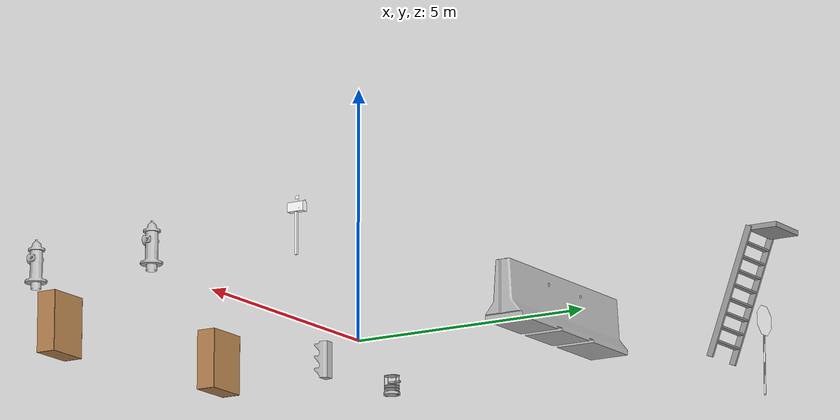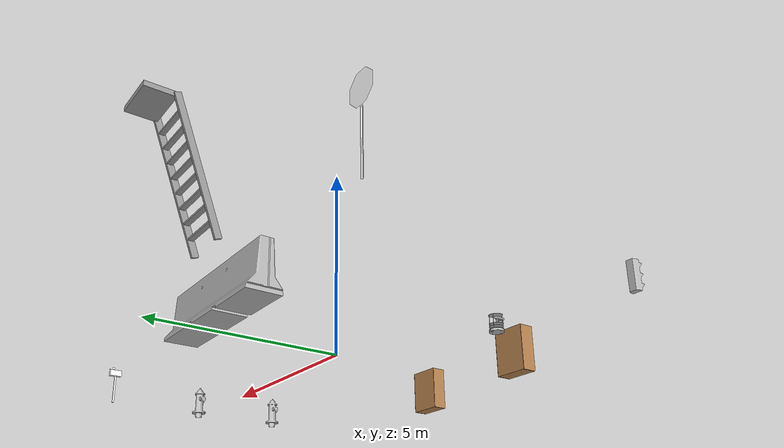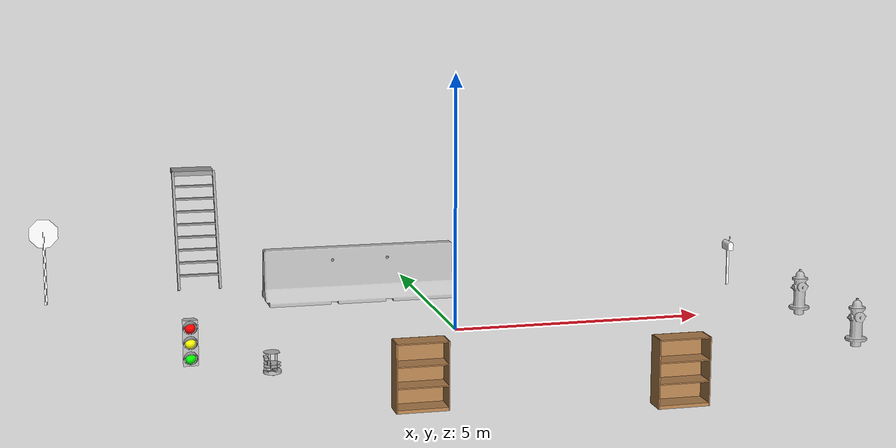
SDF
<?xml version='1.0'?>
<sdf version='1.7'>
  <model name='Race_Track_Models'>
    <model name='Mailbox'>
      <link name='link'>
        <collision name='collision'>
          <geometry>
            <mesh>
              <uri>model://mailbox/meshes/mailbox.dae</uri>
            </mesh>
          </geometry>
        </collision>
        <visual name='visual'>
          <geometry>
            <mesh>
              <uri>model://mailbox/meshes/mailbox.dae</uri>
            </mesh>
          </geometry>
          <material>
            <script>
              <uri>model://mailbox/materials/scripts</uri>
              <uri>model://mailbox/materials/textures</uri>
              <name>Mailbox/Diffuse</name>
            </script>
          </material>
        </visual>
      </link>
      <pose>7.00567 3.1842 -0.178331 0 -0 0</pose>
    </model>
    <model name='Stop Sign'>
      <static>1</static>
      <link name='link'>
        <collision name='collision'>
          <geometry>
            <mesh>
              <uri>model://stop_sign/meshes/stop_sign.dae</uri>
            </mesh>
          </geometry>
        </collision>
        <visual name='visual'>
          <geometry>
            <mesh>
              <uri>model://stop_sign/meshes/stop_sign.dae</uri>
            </mesh>
          </geometry>
          <material>
            <script>
              <uri>model://stop_sign/materials/scripts</uri>
              <uri>model://stop_sign/materials/textures</uri>
              <name>StopSign/Diffuse</name>
            </script>
          </material>
        </visual>
      </link>
      <pose>-7.69841 4.6734 -0.178331 0 -0 3.13707</pose>
    </model>
    <model name='bookshelf'>
      <static>1</static>
      <link name='link'>
        <inertial>
          <mass>1</mass>
        </inertial>
        <collision name='back'>
          <pose>0 0.005 0.6 0 -0 0</pose>
          <geometry>
            <box>
              <size>0.9 0.01 1.2</size>
            </box>
          </geometry>
        </collision>
        <visual name='visual1'>
          <pose>0 0.005 0.6 0 -0 0</pose>
          <geometry>
            <box>
              <size>0.9 0.01 1.2</size>
            </box>
          </geometry>
          <material>
            <script>
              <uri>file://media/materials/scripts/gazebo.material</uri>
              <name>Gazebo/Wood</name>
            </script>
          </material>
        </visual>
        <collision name='left_side'>
          <pose>0.45 -0.195 0.6 0 -0 0</pose>
          <geometry>
            <box>
              <size>0.02 0.4 1.2</size>
            </box>
          </geometry>
        </collision>
        <visual name='visual2'>
          <pose>0.45 -0.195 0.6 0 -0 0</pose>
          <geometry>
            <box>
              <size>0.02 0.4 1.2</size>
            </box>
          </geometry>
          <material>
            <script>
              <uri>file://media/materials/scripts/gazebo.material</uri>
              <name>Gazebo/Wood</name>
            </script>
          </material>
        </visual>
        <collision name='right_side'>
          <pose>-0.45 -0.195 0.6 0 -0 0</pose>
          <geometry>
            <box>
              <size>0.02 0.4 1.2</size>
            </box>
          </geometry>
        </collision>
        <visual name='visual3'>
          <pose>-0.45 -0.195 0.6 0 -0 0</pose>
          <geometry>
            <box>
              <size>0.02 0.4 1.2</size>
            </box>
          </geometry>
          <material>
            <script>
              <uri>file://media/materials/scripts/gazebo.material</uri>
              <name>Gazebo/Wood</name>
            </script>
          </material>
        </visual>
        <collision name='bottom'>
          <pose>0 -0.195 0.03 0 -0 0</pose>
          <geometry>
            <box>
              <size>0.88 0.4 0.06</size>
            </box>
          </geometry>
        </collision>
        <visual name='visual4'>
          <pose>0 -0.195 0.03 0 -0 0</pose>
          <geometry>
            <box>
              <size>0.88 0.4 0.06</size>
            </box>
          </geometry>
          <material>
            <script>
              <uri>file://media/materials/scripts/gazebo.material</uri>
              <name>Gazebo/Wood</name>
            </script>
          </material>
        </visual>
        <collision name='top'>
          <pose>0 -0.195 1.19 0 -0 0</pose>
          <geometry>
            <box>
              <size>0.88 0.4 0.02</size>
            </box>
          </geometry>
        </collision>
        <visual name='visual5'>
          <pose>0 -0.195 1.19 0 -0 0</pose>
          <geometry>
            <box>
              <size>0.88 0.4 0.02</size>
            </box>
          </geometry>
          <material>
            <script>
              <uri>file://media/materials/scripts/gazebo.material</uri>
              <name>Gazebo/Wood</name>
            </script>
          </material>
        </visual>
        <collision name='low_shelf'>
          <pose>0 -0.195 0.43 0 -0 0</pose>
          <geometry>
            <box>
              <size>0.88 0.4 0.02</size>
            </box>
          </geometry>
        </collision>
        <visual name='visual6'>
          <pose>0 -0.195 0.43 0 -0 0</pose>
          <geometry>
            <box>
              <size>0.88 0.4 0.02</size>
            </box>
          </geometry>
          <material>
            <script>
              <uri>file://media/materials/scripts/gazebo.material</uri>
              <name>Gazebo/Wood</name>
            </script>
          </material>
        </visual>
        <collision name='high_shelf'>
          <pose>0 -0.195 0.8 0 -0 0</pose>
          <geometry>
            <box>
              <size>0.88 0.4 0.02</size>
            </box>
          </geometry>
        </collision>
        <visual name='visual7'>
          <pose>0 -0.195 0.8 0 -0 0</pose>
          <geometry>
            <box>
              <size>0.88 0.4 0.02</size>
            </box>
          </geometry>
          <material>
            <script>
              <uri>file://media/materials/scripts/gazebo.material</uri>
              <name>Gazebo/Wood</name>
            </script>
          </material>
        </visual>
      </link>
      <pose>-1.7139 -4.20805 -0.178331 0 -0 0</pose>
    </model>
    <model name='bookshelf_0'>
      <static>1</static>
      <link name='link'>
        <inertial>
          <mass>1</mass>
        </inertial>
        <collision name='back'>
          <pose>0 0.005 0.6 0 -0 0</pose>
          <geometry>
            <box>
              <size>0.9 0.01 1.2</size>
            </box>
          </geometry>
        </collision>
        <visual name='visual1'>
          <pose>0 0.005 0.6 0 -0 0</pose>
          <geometry>
            <box>
              <size>0.9 0.01 1.2</size>
            </box>
          </geometry>
          <material>
            <script>
              <uri>file://media/materials/scripts/gazebo.material</uri>
              <name>Gazebo/Wood</name>
            </script>
          </material>
        </visual>
        <collision name='left_side'>
          <pose>0.45 -0.195 0.6 0 -0 0</pose>
          <geometry>
            <box>
              <size>0.02 0.4 1.2</size>
            </box>
          </geometry>
        </collision>
        <visual name='visual2'>
          <pose>0.45 -0.195 0.6 0 -0 0</pose>
          <geometry>
            <box>
              <size>0.02 0.4 1.2</size>
            </box>
          </geometry>
          <material>
            <script>
              <uri>file://media/materials/scripts/gazebo.material</uri>
              <name>Gazebo/Wood</name>
            </script>
          </material>
        </visual>
        <collision name='right_side'>
          <pose>-0.45 -0.195 0.6 0 -0 0</pose>
          <geometry>
            <box>
              <size>0.02 0.4 1.2</size>
            </box>
          </geometry>
        </collision>
        <visual name='visual3'>
          <pose>-0.45 -0.195 0.6 0 -0 0</pose>
          <geometry>
            <box>
              <size>0.02 0.4 1.2</size>
            </box>
          </geometry>
          <material>
            <script>
              <uri>file://media/materials/scripts/gazebo.material</uri>
              <name>Gazebo/Wood</name>
            </script>
          </material>
        </visual>
        <collision name='bottom'>
          <pose>0 -0.195 0.03 0 -0 0</pose>
          <geometry>
            <box>
              <size>0.88 0.4 0.06</size>
            </box>
          </geometry>
        </collision>
        <visual name='visual4'>
          <pose>0 -0.195 0.03 0 -0 0</pose>
          <geometry>
            <box>
              <size>0.88 0.4 0.06</size>
            </box>
          </geometry>
          <material>
            <script>
              <uri>file://media/materials/scripts/gazebo.material</uri>
              <name>Gazebo/Wood</name>
            </script>
          </material>
        </visual>
        <collision name='top'>
          <pose>0 -0.195 1.19 0 -0 0</pose>
          <geometry>
            <box>
              <size>0.88 0.4 0.02</size>
            </box>
          </geometry>
        </collision>
        <visual name='visual5'>
          <pose>0 -0.195 1.19 0 -0 0</pose>
          <geometry>
            <box>
              <size>0.88 0.4 0.02</size>
            </box>
          </geometry>
          <material>
            <script>
              <uri>file://media/materials/scripts/gazebo.material</uri>
              <name>Gazebo/Wood</name>
            </script>
          </material>
        </visual>
        <collision name='low_shelf'>
          <pose>0 -0.195 0.43 0 -0 0</pose>
          <geometry>
            <box>
              <size>0.88 0.4 0.02</size>
            </box>
          </geometry>
        </collision>
        <visual name='visual6'>
          <pose>0 -0.195 0.43 0 -0 0</pose>
          <geometry>
            <box>
              <size>0.88 0.4 0.02</size>
            </box>
          </geometry>
          <material>
            <script>
              <uri>file://media/materials/scripts/gazebo.material</uri>
              <name>Gazebo/Wood</name>
            </script>
          </material>
        </visual>
        <collision name='high_shelf'>
          <pose>0 -0.195 0.8 0 -0 0</pose>
          <geometry>
            <box>
              <size>0.88 0.4 0.02</size>
            </box>
          </geometry>
        </collision>
        <visual name='visual7'>
          <pose>0 -0.195 0.8 0 -0 0</pose>
          <geometry>
            <box>
              <size>0.88 0.4 0.02</size>
            </box>
          </geometry>
          <material>
            <script>
              <uri>file://media/materials/scripts/gazebo.material</uri>
              <name>Gazebo/Wood</name>
            </script>
          </material>
        </visual>
      </link>
      <pose>2.63462 -4.96152 -0.178331 0 -0 0</pose>
    </model>
    <model name='fire_hydrant'>
      <static>1</static>
      <link name='link'>
        <collision name='collision'>
          <geometry>
            <mesh>
              <uri>model://fire_hydrant/meshes/fire_hydrant.dae</uri>
            </mesh>
          </geometry>
        </collision>
        <visual name='visual'>
          <geometry>
            <mesh>
              <uri>model://fire_hydrant/meshes/fire_hydrant.dae</uri>
            </mesh>
          </geometry>
        </visual>
      </link>
      <pose>7.33669 -2.30001 -0.178331 0 -0 0</pose>
    </model>
    <model name='fire_hydrant_0'>
      <static>1</static>
      <link name='link'>
        <collision name='collision'>
          <geometry>
            <mesh>
              <uri>model://fire_hydrant/meshes/fire_hydrant.dae</uri>
            </mesh>
          </geometry>
        </collision>
        <visual name='visual'>
          <geometry>
            <mesh>
              <uri>model://fire_hydrant/meshes/fire_hydrant.dae</uri>
            </mesh>
          </geometry>
        </visual>
      </link>
      <pose>7.38024 0.302282 -0.178331 0 -0 0</pose>
    </model>
    <model name='jersey_barrier'>
      <static>1</static>
      <link name='link'>
        <visual name='visual'>
          <geometry>
            <mesh>
              <uri>model://jersey_barrier/meshes/jersey_barrier.dae</uri>
            </mesh>
          </geometry>
        </visual>
        <collision name='upright'>
          <pose>0 0 0.5715 0 -0 0</pose>
          <geometry>
            <box>
              <size>4.06542 0.3063 1.143</size>
            </box>
          </geometry>
        </collision>
        <collision name='base'>
          <pose>0 0 0.032258 0 -0 0</pose>
          <geometry>
            <box>
              <size>4.06542 0.8107 0.064516</size>
            </box>
          </geometry>
        </collision>
        <collision name='base2'>
          <pose>0 0 0.1 0 -0 0</pose>
          <geometry>
            <box>
              <size>4.06542 0.65 0.1</size>
            </box>
          </geometry>
        </collision>
        <collision name='base3'>
          <pose>0 0 0.2 0 -0 0</pose>
          <geometry>
            <box>
              <size>4.06542 0.5 0.1</size>
            </box>
          </geometry>
        </collision>
        <collision name='left-angle'>
          <pose>0 -0.224 0.2401 0.9 -0 0</pose>
          <geometry>
            <box>
              <size>4.06542 0.5 0.064516</size>
            </box>
          </geometry>
        </collision>
        <collision name='right-angle'>
          <pose>0 0.224 0.2401 -0.9 0 0</pose>
          <geometry>
            <box>
              <size>4.06542 0.5 0.064516</size>
            </box>
          </geometry>
        </collision>
      </link>
      <pose>-1.18328 3.74123 -0.178331 0 -0 0</pose>
    </model>
    <model name='ladder_70deg_0rails'>
      <static>1</static>
      <link name='step0'>
        <pose>0 0.097059 0.266667 0 -0 0</pose>
        <inertial>
          <mass>9.75482</mass>
          <inertia>
            <ixx>0.00957124</ixx>
            <iyy>0.65963</iyy>
            <izz>0.666842</izz>
            <ixy>0</ixy>
            <ixz>0</ixz>
            <iyz>0</iyz>
          </inertia>
        </inertial>
        <collision name='collision'>
          <geometry>
            <box>
              <size>0.9 0.1016 0.0381</size>
            </box>
          </geometry>
        </collision>
        <visual name='visual'>
          <geometry>
            <box>
              <size>0.9 0.1016 0.0381</size>
            </box>
          </geometry>
          <material>
            <script>
              <uri>file://media/materials/scripts/gazebo.material</uri>
              <name>Gazebo/Grey</name>
            </script>
          </material>
        </visual>
      </link>
      <link name='step1'>
        <pose>0 0.194117 0.533333 0 -0 0</pose>
        <inertial>
          <mass>9.75482</mass>
          <inertia>
            <ixx>0.00957124</ixx>
            <iyy>0.65963</iyy>
            <izz>0.666842</izz>
            <ixy>0</ixy>
            <ixz>0</ixz>
            <iyz>0</iyz>
          </inertia>
        </inertial>
        <collision name='collision'>
          <geometry>
            <box>
              <size>0.9 0.1016 0.0381</size>
            </box>
          </geometry>
        </collision>
        <visual name='visual'>
          <geometry>
            <box>
              <size>0.9 0.1016 0.0381</size>
            </box>
          </geometry>
          <material>
            <script>
              <uri>file://media/materials/scripts/gazebo.material</uri>
              <name>Gazebo/Grey</name>
            </script>
          </material>
        </visual>
      </link>
      <link name='step2'>
        <pose>0 0.291176 0.8 0 -0 0</pose>
        <inertial>
          <mass>9.75482</mass>
          <inertia>
            <ixx>0.00957124</ixx>
            <iyy>0.65963</iyy>
            <izz>0.666842</izz>
            <ixy>0</ixy>
            <ixz>0</ixz>
            <iyz>0</iyz>
          </inertia>
        </inertial>
        <collision name='collision'>
          <geometry>
            <box>
              <size>0.9 0.1016 0.0381</size>
            </box>
          </geometry>
        </collision>
        <visual name='visual'>
          <geometry>
            <box>
              <size>0.9 0.1016 0.0381</size>
            </box>
          </geometry>
          <material>
            <script>
              <uri>file://media/materials/scripts/gazebo.material</uri>
              <name>Gazebo/Grey</name>
            </script>
          </material>
        </visual>
      </link>
      <link name='step3'>
        <pose>0 0.388235 1.06667 0 -0 0</pose>
        <inertial>
          <mass>9.75482</mass>
          <inertia>
            <ixx>0.00957124</ixx>
            <iyy>0.65963</iyy>
            <izz>0.666842</izz>
            <ixy>0</ixy>
            <ixz>0</ixz>
            <iyz>0</iyz>
          </inertia>
        </inertial>
        <collision name='collision'>
          <geometry>
            <box>
              <size>0.9 0.1016 0.0381</size>
            </box>
          </geometry>
        </collision>
        <visual name='visual'>
          <geometry>
            <box>
              <size>0.9 0.1016 0.0381</size>
            </box>
          </geometry>
          <material>
            <script>
              <uri>file://media/materials/scripts/gazebo.material</uri>
              <name>Gazebo/Grey</name>
            </script>
          </material>
        </visual>
      </link>
      <link name='step4'>
        <pose>0 0.485294 1.33333 0 -0 0</pose>
        <inertial>
          <mass>9.75482</mass>
          <inertia>
            <ixx>0.00957124</ixx>
            <iyy>0.65963</iyy>
            <izz>0.666842</izz>
            <ixy>0</ixy>
            <ixz>0</ixz>
            <iyz>0</iyz>
          </inertia>
        </inertial>
        <collision name='collision'>
          <geometry>
            <box>
              <size>0.9 0.1016 0.0381</size>
            </box>
          </geometry>
        </collision>
        <visual name='visual'>
          <geometry>
            <box>
              <size>0.9 0.1016 0.0381</size>
            </box>
          </geometry>
          <material>
            <script>
              <uri>file://media/materials/scripts/gazebo.material</uri>
              <name>Gazebo/Grey</name>
            </script>
          </material>
        </visual>
      </link>
      <link name='step5'>
        <pose>0 0.582352 1.6 0 -0 0</pose>
        <inertial>
          <mass>9.75482</mass>
          <inertia>
            <ixx>0.00957124</ixx>
            <iyy>0.65963</iyy>
            <izz>0.666842</izz>
            <ixy>0</ixy>
            <ixz>0</ixz>
            <iyz>0</iyz>
          </inertia>
        </inertial>
        <collision name='collision'>
          <geometry>
            <box>
              <size>0.9 0.1016 0.0381</size>
            </box>
          </geometry>
        </collision>
        <visual name='visual'>
          <geometry>
            <box>
              <size>0.9 0.1016 0.0381</size>
            </box>
          </geometry>
          <material>
            <script>
              <uri>file://media/materials/scripts/gazebo.material</uri>
              <name>Gazebo/Grey</name>
            </script>
          </material>
        </visual>
      </link>
      <link name='step6'>
        <pose>0 0.679411 1.86667 0 -0 0</pose>
        <inertial>
          <mass>9.75482</mass>
          <inertia>
            <ixx>0.00957124</ixx>
            <iyy>0.65963</iyy>
            <izz>0.666842</izz>
            <ixy>0</ixy>
            <ixz>0</ixz>
            <iyz>0</iyz>
          </inertia>
        </inertial>
        <collision name='collision'>
          <geometry>
            <box>
              <size>0.9 0.1016 0.0381</size>
            </box>
          </geometry>
        </collision>
        <visual name='visual'>
          <geometry>
            <box>
              <size>0.9 0.1016 0.0381</size>
            </box>
          </geometry>
          <material>
            <script>
              <uri>file://media/materials/scripts/gazebo.material</uri>
              <name>Gazebo/Grey</name>
            </script>
          </material>
        </visual>
      </link>
      <link name='step7'>
        <pose>0 0.77647 2.13333 0 -0 0</pose>
        <inertial>
          <mass>9.75482</mass>
          <inertia>
            <ixx>0.00957124</ixx>
            <iyy>0.65963</iyy>
            <izz>0.666842</izz>
            <ixy>0</ixy>
            <ixz>0</ixz>
            <iyz>0</iyz>
          </inertia>
        </inertial>
        <collision name='collision'>
          <geometry>
            <box>
              <size>0.9 0.1016 0.0381</size>
            </box>
          </geometry>
        </collision>
        <visual name='visual'>
          <geometry>
            <box>
              <size>0.9 0.1016 0.0381</size>
            </box>
          </geometry>
          <material>
            <script>
              <uri>file://media/materials/scripts/gazebo.material</uri>
              <name>Gazebo/Grey</name>
            </script>
          </material>
        </visual>
      </link>
      <link name='landing'>
        <pose>0 1.17353 2.4 0 -0 0</pose>
        <inertial>
          <mass>57.6072</mass>
          <inertia>
            <ixx>1.73518</ixx>
            <iyy>3.89545</iyy>
            <izz>5.6167</izz>
            <ixy>0</ixy>
            <ixz>0</ixz>
            <iyz>0</iyz>
          </inertia>
        </inertial>
        <collision name='collision'>
          <geometry>
            <box>
              <size>0.9 0.6 0.1016</size>
            </box>
          </geometry>
        </collision>
        <visual name='visual'>
          <geometry>
            <box>
              <size>0.9 0.6 0.1016</size>
            </box>
          </geometry>
          <material>
            <script>
              <uri>file://media/materials/scripts/gazebo.material</uri>
              <name>Gazebo/Grey</name>
            </script>
          </material>
        </visual>
      </link>
      <link name='left_side_wall'>
        <pose>-0.45 0.436764 1.2 1.22173 -0 0</pose>
        <collision name='collision'>
          <geometry>
            <box>
              <size>0.0508 2.63403 0.13</size>
            </box>
          </geometry>
        </collision>
        <visual name='visual'>
          <geometry>
            <box>
              <size>0.0508 2.63403 0.13</size>
            </box>
          </geometry>
          <material>
            <script>
              <uri>file://media/materials/scripts/gazebo.material</uri>
              <name>Gazebo/Grey</name>
            </script>
          </material>
        </visual>
      </link>
      <link name='right_side_wall'>
        <pose>0.45 0.436764 1.2 1.22173 -0 0</pose>
        <collision name='collision'>
          <geometry>
            <box>
              <size>0.0508 2.63403 0.13</size>
            </box>
          </geometry>
        </collision>
        <visual name='visual'>
          <geometry>
            <box>
              <size>0.0508 2.63403 0.13</size>
            </box>
          </geometry>
          <material>
            <script>
              <uri>file://media/materials/scripts/gazebo.material</uri>
              <name>Gazebo/Grey</name>
            </script>
          </material>
        </visual>
      </link>
      <pose>-4.38738 5.53394 -0.178331 0 -0 0</pose>
    </model>
    <model name='stop_light'>
      <static>1</static>
      <pose>-5.54624 -4.30489 1.60498 0 -0 0</pose>
      <link name='link'>
        <collision name='collision'>
          <geometry>
            <mesh>
              <uri>model://stop_light/meshes/stop_light.obj</uri>
              <scale>0.01 0.01 0.01</scale>
            </mesh>
          </geometry>
        </collision>
        <visual name='frame'>
          <geometry>
            <mesh>
              <uri>model://stop_light/meshes/stop_light.obj</uri>
              <scale>0.01 0.01 0.01</scale>
            </mesh>
          </geometry>
        </visual>
        <visual name='red'>
          <pose>-0.001123 -0.082251 -0.147514 0 -0 0</pose>
          <geometry>
            <sphere>
              <radius>0.1012</radius>
            </sphere>
          </geometry>
          <material>
            <script>
              <uri>model://stop_light/materials/scripts/</uri>
              <uri>model://stop_light/materials/textures/</uri>
              <name>StopLight/Light</name>
            </script>
            <ambient>1 0 0 1</ambient>
            <specular>1 0 0 1</specular>
          </material>
        </visual>
        <visual name='yellow'>
          <pose>-0.001123 -0.082251 -0.402 0 -0 0</pose>
          <geometry>
            <sphere>
              <radius>0.1012</radius>
            </sphere>
          </geometry>
          <material>
            <script>
              <uri>model://stop_light/materials/scripts/</uri>
              <uri>model://stop_light/materials/textures/</uri>
              <name>StopLight/Light</name>
            </script>
            <ambient>1 1 0 1</ambient>
            <specular>1 1 0 1</specular>
          </material>
        </visual>
        <visual name='green'>
          <pose>-0.001123 -0.082251 -0.655 0 -0 0</pose>
          <geometry>
            <sphere>
              <radius>0.1012</radius>
            </sphere>
          </geometry>
          <material>
            <script>
              <uri>model://stop_light/materials/scripts/</uri>
              <uri>model://stop_light/materials/textures/</uri>
              <name>StopLight/Light</name>
            </script>
            <ambient>0 1 0 1</ambient>
            <specular>0 1 0 1</specular>
          </material>
        </visual>
      </link>
    </model>
    <model name='turtlebot'>
      <link name='rack'>
        <inertial>
          <pose>0.001453 -0.000453 0.029787 0 -0 0</pose>
          <inertia>
            <ixx>0.05864</ixx>
            <ixy>0.000124</ixy>
            <ixz>0.000615</ixz>
            <iyy>0.058786</iyy>
            <iyz>1.4e-05</iyz>
            <izz>1.53244</izz>
          </inertia>
          <mass>2.234</mass>
        </inertial>
        <collision name='plate_0_collision'>
          <pose>-0.04334 0 0.084757 0 -0 0</pose>
          <geometry>
            <box>
              <size>0.233502 0.314845 0.006401</size>
            </box>
          </geometry>
        </collision>
        <visual name='plate_0_visual'>
          <pose>-0.04334 0 0.084757 0 -0 0</pose>
          <geometry>
            <mesh>
              <uri>model://turtlebot/meshes/plate_0_logo.dae</uri>
            </mesh>
          </geometry>
        </visual>
        <collision name='plate_1_collision'>
          <pose>-0.00266 0 0.141907 0 -0 0</pose>
          <geometry>
            <box>
              <size>0.314856 0.314856 0.006401</size>
            </box>
          </geometry>
        </collision>
        <visual name='plate_1_visual'>
          <pose>-0.00266 0 0.141907 0 -0 0</pose>
          <geometry>
            <mesh>
              <uri>model://turtlebot/meshes/plate_1_logo.dae</uri>
            </mesh>
          </geometry>
        </visual>
        <collision name='plate_2_collision'>
          <pose>-0.00266 0 0.199108 0 -0 0</pose>
          <geometry>
            <box>
              <size>0.314856 0.314856 0.006401</size>
            </box>
          </geometry>
        </collision>
        <visual name='plate_2_visual'>
          <pose>-0.00266 0 0.199108 0 -0 0</pose>
          <geometry>
            <mesh>
              <uri>model://turtlebot/meshes/plate_1_logo.dae</uri>
            </mesh>
          </geometry>
        </visual>
        <collision name='plate_3_collision'>
          <pose>-0.01582 0 0.405457 0 -0 0</pose>
          <geometry>
            <box>
              <size>0.288 0.315 0.006401</size>
            </box>
          </geometry>
        </collision>
        <visual name='plate_3_visual'>
          <pose>-0.01582 0 0.405457 0 -0 0</pose>
          <geometry>
            <mesh>
              <uri>model://turtlebot/meshes/plate_2_logo.dae</uri>
            </mesh>
          </geometry>
        </visual>
        <collision name='spacer_0_collision'>
          <pose>-0.00254 0.111468 0.079992 0 -0 0</pose>
          <geometry>
            <cylinder>
              <radius>0.0127</radius>
              <length>0.003175</length>
            </cylinder>
          </geometry>
        </collision>
        <visual name='spacer_0_visual'>
          <pose>-0.00254 0.111468 0.079992 0 -0 0</pose>
          <geometry>
            <mesh>
              <uri>model://turtlebot/meshes/68-02403-125_Spacer.dae</uri>
            </mesh>
          </geometry>
        </visual>
        <collision name='spacer_1_collision'>
          <pose>-0.00254 -0.111468 0.079992 0 -0 0</pose>
          <geometry>
            <cylinder>
              <radius>0.0127</radius>
              <length>0.003175</length>
            </cylinder>
          </geometry>
        </collision>
        <visual name='spacer_1_visual'>
          <pose>-0.00254 -0.111468 0.079992 0 -0 0</pose>
          <geometry>
            <mesh>
              <uri>model://turtlebot/meshes/68-02403-125_Spacer.dae</uri>
            </mesh>
          </geometry>
        </visual>
        <collision name='spacer_2_collision'>
          <pose>-0.07239 -0.111468 0.079992 0 -0 0</pose>
          <geometry>
            <cylinder>
              <radius>0.0127</radius>
              <length>0.003175</length>
            </cylinder>
          </geometry>
        </collision>
        <visual name='spacer_2_visual'>
          <pose>-0.07239 -0.111468 0.079992 0 -0 0</pose>
          <geometry>
            <mesh>
              <uri>model://turtlebot/meshes/68-02403-125_Spacer.dae</uri>
            </mesh>
          </geometry>
        </visual>
        <collision name='spacer_3_collision'>
          <pose>-0.07239 0.111468 0.079992 0 -0 0</pose>
          <geometry>
            <cylinder>
              <radius>0.0127</radius>
              <length>0.003175</length>
            </cylinder>
          </geometry>
        </collision>
        <visual name='spacer_3_visual'>
          <pose>-0.07239 0.111468 0.079992 0 -0 0</pose>
          <geometry>
            <mesh>
              <uri>model://turtlebot/meshes/68-02403-125_Spacer.dae</uri>
            </mesh>
          </geometry>
        </visual>
        <collision name='standoff_2in_0_collision'>
          <pose>0.06764 0.13142 0.08798 0 -0 0</pose>
          <geometry>
            <cylinder>
              <radius>0.0381</radius>
              <length>0.0635</length>
            </cylinder>
          </geometry>
        </collision>
        <visual name='standoff_2in_0_visual'>
          <pose>0.06764 0.13142 0.08798 0 -0 0</pose>
          <geometry>
            <mesh>
              <uri>model://turtlebot/meshes/68-04552-2000-RA_Turtlebot_M-F_Standoff.dae</uri>
            </mesh>
          </geometry>
        </visual>
        <collision name='standoff_2in_1_collision'>
          <pose>0.06764 -0.13142 0.08798 0 -0 0</pose>
          <geometry>
            <cylinder>
              <radius>0.0381</radius>
              <length>0.0635</length>
            </cylinder>
          </geometry>
        </collision>
        <visual name='standoff_2in_1_visual'>
          <pose>0.06764 -0.13142 0.08798 0 -0 0</pose>
          <geometry>
            <mesh>
              <uri>model://turtlebot/meshes/68-04552-2000-RA_Turtlebot_M-F_Standoff.dae</uri>
            </mesh>
          </geometry>
        </visual>
        <collision name='standoff_2in_2_collision'>
          <pose>-0.052832 -0.13142 0.08798 0 -0 0</pose>
          <geometry>
            <cylinder>
              <radius>0.0381</radius>
              <length>0.0635</length>
            </cylinder>
          </geometry>
        </collision>
        <visual name='standoff_2in_2_visual'>
          <pose>-0.052832 -0.13142 0.08798 0 -0 0</pose>
          <geometry>
            <mesh>
              <uri>model://turtlebot/meshes/68-04552-2000-RA_Turtlebot_M-F_Standoff.dae</uri>
            </mesh>
          </geometry>
        </visual>
        <collision name='standoff_2in_3_collision'>
          <pose>-0.052832 0.13142 0.08798 0 -0 0</pose>
          <geometry>
            <cylinder>
              <radius>0.0381</radius>
              <length>0.0635</length>
            </cylinder>
          </geometry>
        </collision>
        <visual name='standoff_2in_3_visual'>
          <pose>-0.052832 0.13142 0.08798 0 -0 0</pose>
          <geometry>
            <mesh>
              <uri>model://turtlebot/meshes/68-04552-2000-RA_Turtlebot_M-F_Standoff.dae</uri>
            </mesh>
          </geometry>
        </visual>
        <collision name='standoff_2in_4_collision'>
          <pose>0.06764 0.13142 0.14513 0 -0 0</pose>
          <geometry>
            <cylinder>
              <radius>0.0381</radius>
              <length>0.0635</length>
            </cylinder>
          </geometry>
        </collision>
        <visual name='standoff_2in_4_visual'>
          <pose>0.06764 0.13142 0.14513 0 -0 0</pose>
          <geometry>
            <mesh>
              <uri>model://turtlebot/meshes/68-04552-2000-RA_Turtlebot_M-F_Standoff.dae</uri>
            </mesh>
          </geometry>
        </visual>
        <collision name='standoff_2in_5_collision'>
          <pose>0.06764 -0.13142 0.14513 0 -0 0</pose>
          <geometry>
            <cylinder>
              <radius>0.0381</radius>
              <length>0.0635</length>
            </cylinder>
          </geometry>
        </collision>
        <visual name='standoff_2in_5_visual'>
          <pose>0.06764 -0.13142 0.14513 0 -0 0</pose>
          <geometry>
            <mesh>
              <uri>model://turtlebot/meshes/68-04552-2000-RA_Turtlebot_M-F_Standoff.dae</uri>
            </mesh>
          </geometry>
        </visual>
        <collision name='standoff_2in_6_collision'>
          <pose>-0.052832 -0.13142 0.14513 0 -0 0</pose>
          <geometry>
            <cylinder>
              <radius>0.0381</radius>
              <length>0.0635</length>
            </cylinder>
          </geometry>
        </collision>
        <visual name='standoff_2in_6_visual'>
          <pose>-0.052832 -0.13142 0.14513 0 -0 0</pose>
          <geometry>
            <mesh>
              <uri>model://turtlebot/meshes/68-04552-2000-RA_Turtlebot_M-F_Standoff.dae</uri>
            </mesh>
          </geometry>
        </visual>
        <collision name='standoff_2in_7_collision'>
          <pose>-0.052832 0.13142 0.14513 0 -0 0</pose>
          <geometry>
            <cylinder>
              <radius>0.0381</radius>
              <length>0.0635</length>
            </cylinder>
          </geometry>
        </collision>
        <visual name='standoff_2in_7_visual'>
          <pose>-0.052832 0.13142 0.14513 0 -0 0</pose>
          <geometry>
            <mesh>
              <uri>model://turtlebot/meshes/68-04552-2000-RA_Turtlebot_M-F_Standoff.dae</uri>
            </mesh>
          </geometry>
        </visual>
        <collision name='standoff_8in_0_collision'>
          <pose>0.06764 0.13142 0.20228 0 -0 0</pose>
          <geometry>
            <cylinder>
              <radius>0.011113</radius>
              <length>0.2032</length>
            </cylinder>
          </geometry>
        </collision>
        <visual name='standoff_8in_0_visual'>
          <pose>0.06764 0.13142 0.20228 0 -0 0</pose>
          <geometry>
            <mesh>
              <uri>model://turtlebot/meshes/68-02421-8000-RA_Turtlebot_F-F_Standoff.dae</uri>
            </mesh>
          </geometry>
        </visual>
        <collision name='standoff_8in_1_collision'>
          <pose>0.06764 -0.13142 0.20228 0 -0 0</pose>
          <geometry>
            <cylinder>
              <radius>0.011113</radius>
              <length>0.2032</length>
            </cylinder>
          </geometry>
        </collision>
        <visual name='standoff_8in_1_visual'>
          <pose>0.06764 -0.13142 0.20228 0 -0 0</pose>
          <geometry>
            <mesh>
              <uri>model://turtlebot/meshes/68-02421-8000-RA_Turtlebot_F-F_Standoff.dae</uri>
            </mesh>
          </geometry>
        </visual>
        <collision name='standoff_8in_2_collision'>
          <pose>-0.052832 -0.13142 0.20228 0 -0 0</pose>
          <geometry>
            <cylinder>
              <radius>0.011113</radius>
              <length>0.2032</length>
            </cylinder>
          </geometry>
        </collision>
        <visual name='standoff_8in_2_visual'>
          <pose>-0.052832 -0.13142 0.20228 0 -0 0</pose>
          <geometry>
            <mesh>
              <uri>model://turtlebot/meshes/68-02421-8000-RA_Turtlebot_F-F_Standoff.dae</uri>
            </mesh>
          </geometry>
        </visual>
        <collision name='standoff_8in_3_collision'>
          <pose>-0.052832 0.13142 0.20228 0 -0 0</pose>
          <geometry>
            <cylinder>
              <radius>0.011113</radius>
              <length>0.2032</length>
            </cylinder>
          </geometry>
        </collision>
        <visual name='standoff_8in_3_visual'>
          <pose>-0.052832 0.13142 0.20228 0 -0 0</pose>
          <geometry>
            <mesh>
              <uri>model://turtlebot/meshes/68-02421-8000-RA_Turtlebot_F-F_Standoff.dae</uri>
            </mesh>
          </geometry>
        </visual>
        <collision name='standoff_kinect_0_collision'>
          <pose>-0.105098 0.098 0.202308 0 -0 0</pose>
          <geometry>
            <cylinder>
              <radius>0.001111</radius>
              <length>0.008585</length>
            </cylinder>
          </geometry>
        </collision>
        <visual name='standoff_kinect_0_visual'>
          <pose>-0.105098 0.098 0.202308 0 -0 0</pose>
          <geometry>
            <mesh>
              <uri>model://turtlebot/meshes/68-04556-RA_Kinect_Standoff_Assy.dae</uri>
            </mesh>
          </geometry>
        </visual>
        <collision name='standoff_kinect_1_collision'>
          <pose>-0.105098 -0.098 0.202308 0 -0 0</pose>
          <geometry>
            <cylinder>
              <radius>0.001111</radius>
              <length>0.008585</length>
            </cylinder>
          </geometry>
        </collision>
        <visual name='standoff_kinect_1_visual'>
          <pose>-0.105098 -0.098 0.202308 0 -0 0</pose>
          <geometry>
            <mesh>
              <uri>model://turtlebot/meshes/68-04556-RA_Kinect_Standoff_Assy.dae</uri>
            </mesh>
          </geometry>
        </visual>
        <sensor name='laser' type='ray'>
          <pose>-0.065 0 0.092 0 -0 0</pose>
          <ray>
            <scan>
              <horizontal>
                <samples>180</samples>
                <resolution>1</resolution>
                <min_angle>-2.26893</min_angle>
                <max_angle>2.26893</max_angle>
              </horizontal>
            </scan>
            <range>
              <min>0.08</min>
              <max>10</max>
              <resolution>0.01</resolution>
            </range>
          </ray>
          <update_rate>20</update_rate>
        </sensor>
      </link>
      <frame name='create::__model__' attached_to='create::base'>
        <pose relative_to='__model__'>0 0 0 0 -0 0</pose>
      </frame>
      <link name='create::base'>
        <inertial>
          <pose>0.001453 -0.000453 0.029787 0 -0 0</pose>
          <inertia>
            <ixx>0.05864</ixx>
            <ixy>0.000124</ixy>
            <ixz>0.000615</ixz>
            <iyy>0.058786</iyy>
            <iyz>1.4e-05</iyz>
            <izz>1.53244</izz>
          </inertia>
          <mass>2.234</mass>
        </inertial>
        <collision name='base_collision'>
          <pose>0 0 0.0478 0 -0 0</pose>
          <geometry>
            <cylinder>
              <radius>0.016495</radius>
              <length>0.061163</length>
            </cylinder>
          </geometry>
        </collision>
        <visual name='base_visual'>
          <pose>0 0 0.0478 0 -0 0</pose>
          <geometry>
            <mesh>
              <uri>model://create/meshes/create_body.dae</uri>
            </mesh>
          </geometry>
        </visual>
        <collision name='front_wheel_collision'>
          <pose>0.13 0 0.017 -0 1.5707 1.5707</pose>
          <geometry>
            <sphere>
              <radius>0.018</radius>
            </sphere>
          </geometry>
          <surface>
            <friction>
              <ode>
                <mu>0</mu>
                <mu2>0</mu2>
                <fdir1>0 0 0</fdir1>
                <slip1>0</slip1>
                <slip2>0</slip2>
              </ode>
            </friction>
          </surface>
        </collision>
        <visual name='front_wheel_visual'>
          <pose>0.13 0 0.017 -0 1.5707 1.5707</pose>
          <geometry>
            <sphere>
              <radius>0.009</radius>
            </sphere>
          </geometry>
        </visual>
        <collision name='rear_wheel_collision'>
          <pose>-0.13 0 0.017 -0 1.5707 1.5707</pose>
          <geometry>
            <sphere>
              <radius>0.015</radius>
            </sphere>
          </geometry>
          <surface>
            <friction>
              <ode>
                <mu>0</mu>
                <mu2>0</mu2>
                <fdir1>0 0 0</fdir1>
                <slip1>0</slip1>
                <slip2>0</slip2>
              </ode>
            </friction>
          </surface>
        </collision>
        <visual name='rear_wheel_visual'>
          <pose>-0.13 0 0.017 -0 1.5707 1.5707</pose>
          <geometry>
            <sphere>
              <radius>0.0075</radius>
            </sphere>
          </geometry>
        </visual>
        <sensor name='left_cliff_sensor' type='ray'>
          <pose>0.07 0.14 0.027 0 1.57079 0</pose>
          <ray>
            <scan>
              <horizontal>
                <samples>1</samples>
                <resolution>1</resolution>
                <min_angle>0</min_angle>
                <max_angle>0</max_angle>
              </horizontal>
            </scan>
            <range>
              <min>0.01</min>
              <max>0.04</max>
              <resolution>0.1</resolution>
            </range>
          </ray>
        </sensor>
        <sensor name='leftfront_cliff_sensor' type='ray'>
          <pose>0.15 0.04 0.027 0 1.57079 0</pose>
          <ray>
            <scan>
              <horizontal>
                <samples>1</samples>
                <resolution>1</resolution>
                <min_angle>0</min_angle>
                <max_angle>0</max_angle>
              </horizontal>
            </scan>
            <range>
              <min>0.01</min>
              <max>0.04</max>
              <resolution>0.1</resolution>
            </range>
          </ray>
        </sensor>
        <sensor name='right_cliff_sensor' type='ray'>
          <pose>0.07 -0.14 0.027 0 1.57079 0</pose>
          <ray>
            <scan>
              <horizontal>
                <samples>1</samples>
                <resolution>1</resolution>
                <min_angle>0</min_angle>
                <max_angle>0</max_angle>
              </horizontal>
            </scan>
            <range>
              <min>0.01</min>
              <max>0.04</max>
              <resolution>0.1</resolution>
            </range>
          </ray>
        </sensor>
        <sensor name='rightfront_cliff_sensor' type='ray'>
          <pose>0.15 -0.04 0.027 0 1.57079 0</pose>
          <ray>
            <scan>
              <horizontal>
                <samples>1</samples>
                <resolution>1</resolution>
                <min_angle>0</min_angle>
                <max_angle>0</max_angle>
              </horizontal>
            </scan>
            <range>
              <min>0.01</min>
              <max>0.04</max>
              <resolution>0.1</resolution>
            </range>
          </ray>
        </sensor>
        <sensor name='wall_sensor' type='ray'>
          <pose>0.09 -0.12 0.059 0 0 -1</pose>
          <ray>
            <scan>
              <horizontal>
                <samples>1</samples>
                <resolution>1</resolution>
                <min_angle>0</min_angle>
                <max_angle>0</max_angle>
              </horizontal>
            </scan>
            <range>
              <min>0.016</min>
              <max>0.04</max>
              <resolution>0.1</resolution>
            </range>
          </ray>
        </sensor>
        <pose>0 0 0 0 -0 0</pose>
      </link>
      <link name='create::left_wheel'>
        <pose>0 0.13 0.032 0 -0 0</pose>
        <inertial>
          <inertia>
            <ixx>0.001</ixx>
            <ixy>0</ixy>
            <ixz>0</ixz>
            <iyy>0.001</iyy>
            <iyz>0</iyz>
            <izz>0.001</izz>
          </inertia>
          <mass>0.01</mass>
        </inertial>
        <collision name='collision'>
          <pose>0 0 0 -0 1.5707 1.5707</pose>
          <geometry>
            <cylinder>
              <radius>0.033</radius>
              <length>0.023</length>
            </cylinder>
          </geometry>
          <surface>
            <friction>
              <ode>
                <mu>10</mu>
                <mu2>10</mu2>
                <fdir1>0 0 0</fdir1>
                <slip1>0</slip1>
                <slip2>0</slip2>
              </ode>
            </friction>
          </surface>
        </collision>
        <visual name='visual'>
          <pose>0 0 0 -0 1.5707 1.5707</pose>
          <geometry>
            <cylinder>
              <radius>0.033</radius>
              <length>0.023</length>
            </cylinder>
          </geometry>
        </visual>
      </link>
      <link name='create::right_wheel'>
        <pose>0 -0.13 0.032 0 -0 0</pose>
        <inertial>
          <inertia>
            <ixx>0.001</ixx>
            <ixy>0</ixy>
            <ixz>0</ixz>
            <iyy>0.001</iyy>
            <iyz>0</iyz>
            <izz>0.001</izz>
          </inertia>
          <mass>0.01</mass>
        </inertial>
        <collision name='collision'>
          <pose>0 0 0 -0 1.5707 1.5707</pose>
          <geometry>
            <cylinder>
              <radius>0.033</radius>
              <length>0.023</length>
            </cylinder>
          </geometry>
          <surface>
            <friction>
              <ode>
                <mu>10</mu>
                <mu2>10</mu2>
                <fdir1>0 0 0</fdir1>
                <slip1>0</slip1>
                <slip2>0</slip2>
              </ode>
            </friction>
          </surface>
        </collision>
        <visual name='visual'>
          <pose>0 0 0 -0 1.5707 1.5707</pose>
          <geometry>
            <cylinder>
              <radius>0.033</radius>
              <length>0.023</length>
            </cylinder>
          </geometry>
        </visual>
      </link>
      <joint name='create::left_wheel' type='revolute'>
        <parent>create::base</parent>
        <child>create::left_wheel</child>
        <axis>
          <xyz>0 1 0</xyz>
          <limit>
            <lower>-1e+16</lower>
            <upper>1e+16</upper>
          </limit>
        </axis>
      </joint>
      <joint name='create::right_wheel' type='revolute'>
        <parent>create::base</parent>
        <child>create::right_wheel</child>
        <axis>
          <xyz>0 1 0</xyz>
          <limit>
            <lower>-1e+16</lower>
            <upper>1e+16</upper>
          </limit>
        </axis>
      </joint>
      <frame name='kinect::__model__' attached_to='kinect::link'>
        <pose relative_to='__model__'>-0.087098 0 0.303857 0 -0 0</pose>
      </frame>
      <link name='kinect::link'>
        <inertial>
          <mass>0.1</mass>
        </inertial>
        <collision name='collision'>
          <geometry>
            <box>
              <size>0.073 0.276 0.072</size>
            </box>
          </geometry>
        </collision>
        <visual name='visual'>
          <geometry>
            <mesh>
              <uri>model://kinect/meshes/kinect.dae</uri>
            </mesh>
          </geometry>
        </visual>
        <sensor name='camera' type='depth'>
          <update_rate>20</update_rate>
          <camera>
            <horizontal_fov>1.0472</horizontal_fov>
            <image>
              <width>640</width>
              <height>480</height>
              <format>R8G8B8</format>
            </image>
            <clip>
              <near>0.05</near>
              <far>3</far>
            </clip>
          </camera>
        </sensor>
        <pose>-0.087098 0 0.303857 0 -0 0</pose>
      </link>
      <joint name='create_rack' type='revolute'>
        <parent>create::base</parent>
        <child>rack</child>
        <axis>
          <xyz expressed_in='__model__'>0 0 1</xyz>
          <limit>
            <lower>0</lower>
            <upper>0</upper>
          </limit>
        </axis>
      </joint>
      <joint name='kinect_rack' type='revolute'>
        <parent>kinect::link</parent>
        <child>rack</child>
        <axis>
          <xyz expressed_in='__model__'>0 0 1</xyz>
          <limit>
            <lower>0</lower>
            <upper>0</upper>
          </limit>
        </axis>
      </joint>
      <pose>-3.82802 -1.66057 -0.178331 0 -0 0</pose>
    </model>
    <static>0</static>
    <allow_auto_disable>1</allow_auto_disable>
  </model>
</sdf>
